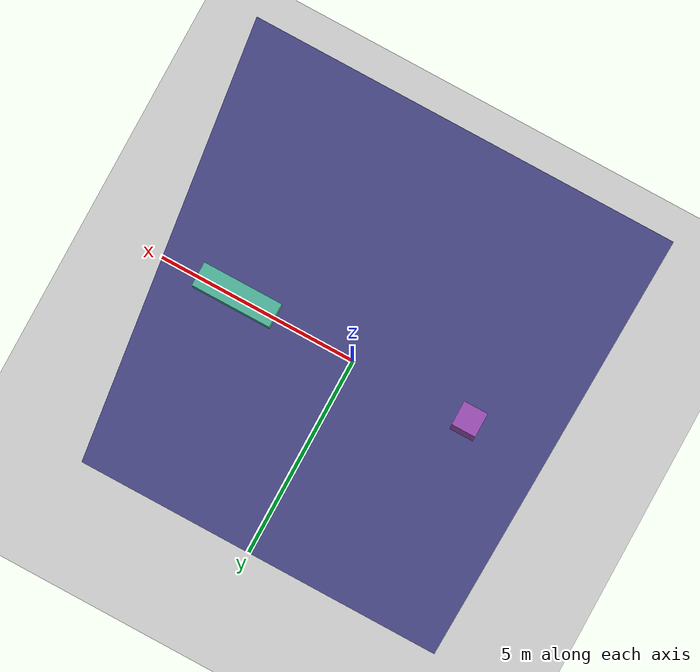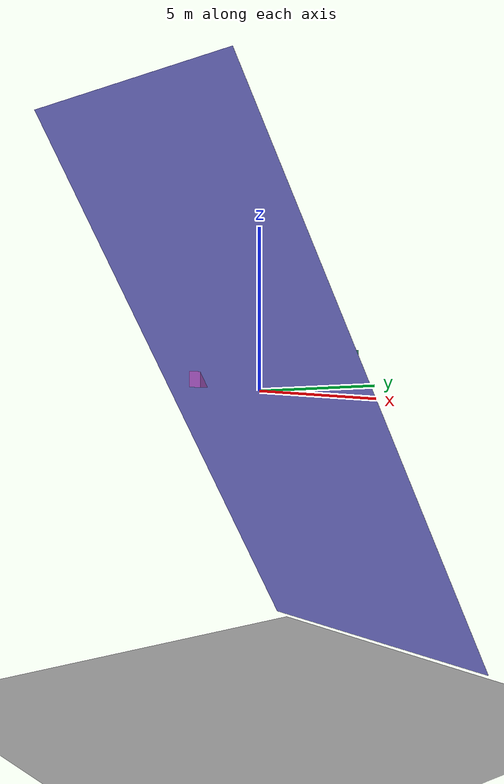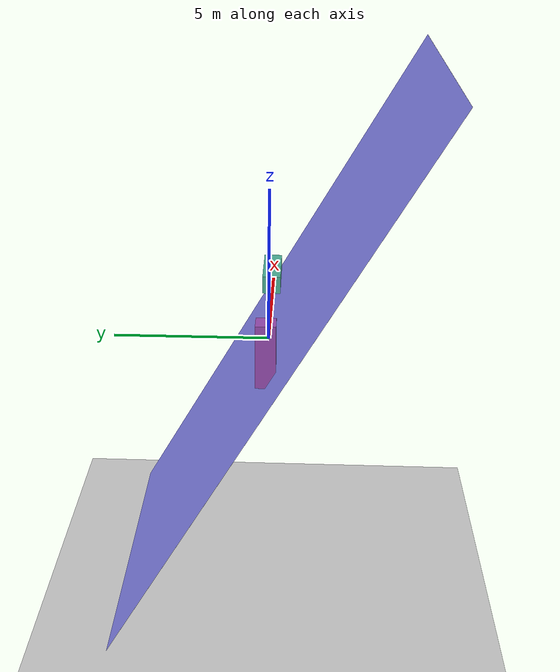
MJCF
<mujoco>
  <option gravity="0 0 -9.81"/>
  <worldbody>
    <body name="inclined_plane" pos="0 0 0">
      <geom type="plane" size="5 10 0.1" rgba="0.5 0.5 0.9 1" friction="0.5 0.5 0.5" quat="0.5 0.86 0 0"/>
    </body>
    <body name="surface" pos="-10 0 -10">
      <geom type="plane" size="25 25 0.1" rgba="0.8 0.8 0.8 1" friction="1 1 1"/>
    </body>
    <body name="tall_block" pos="-3 0 1">
      <geom type="box" size="0.3 0.3 1.0" density="1" rgba="0.6 0.3 0.7 1"/>
      <joint type="free"/>
    </body>
    <body name="wide_block" pos="3 0 1">
      <geom type="box" size="1.0 0.3 0.3" density="1" rgba="0.3 0.7 0.6 1"/>
      <joint type="free"/>
    </body>
  </worldbody>
</mujoco>
